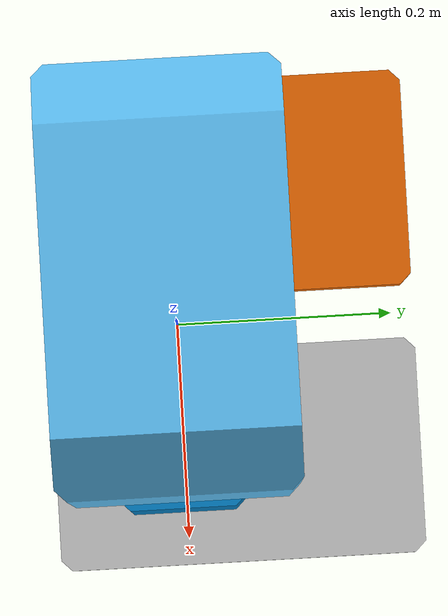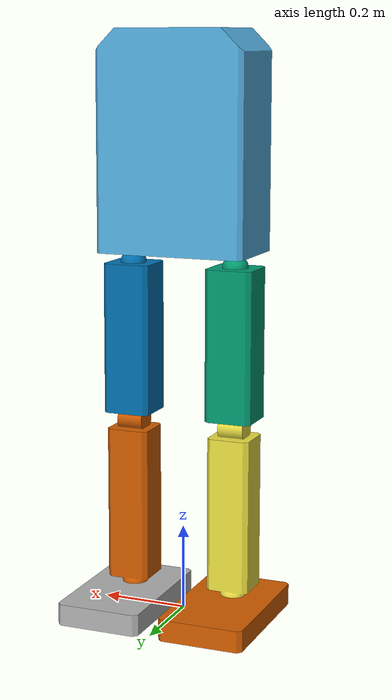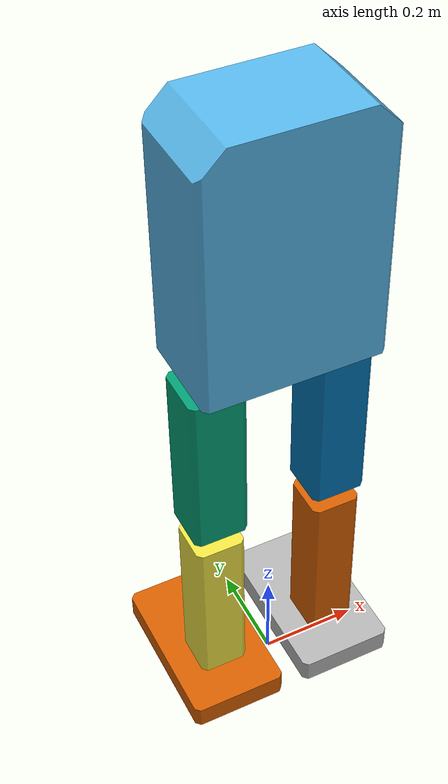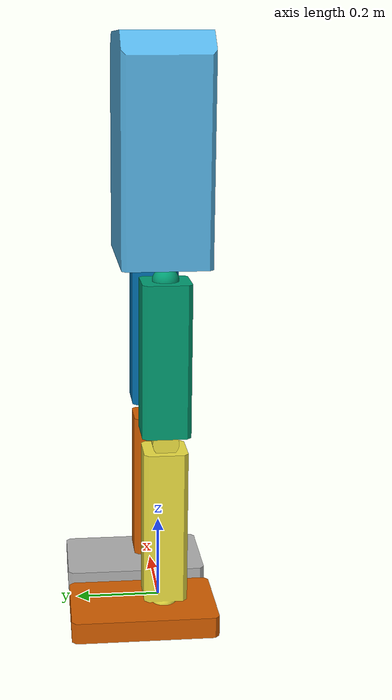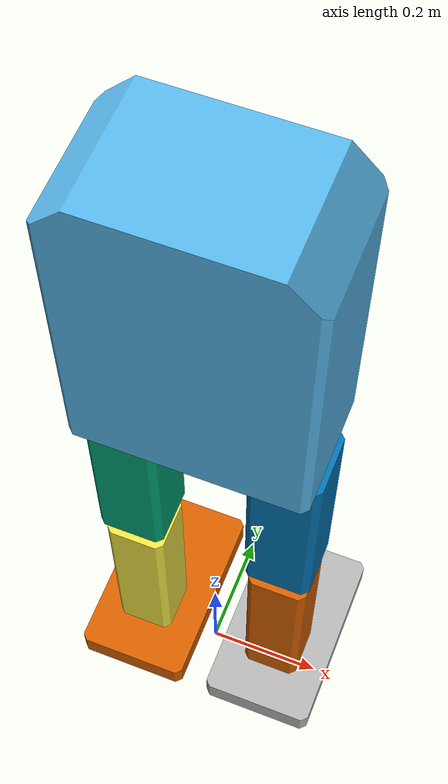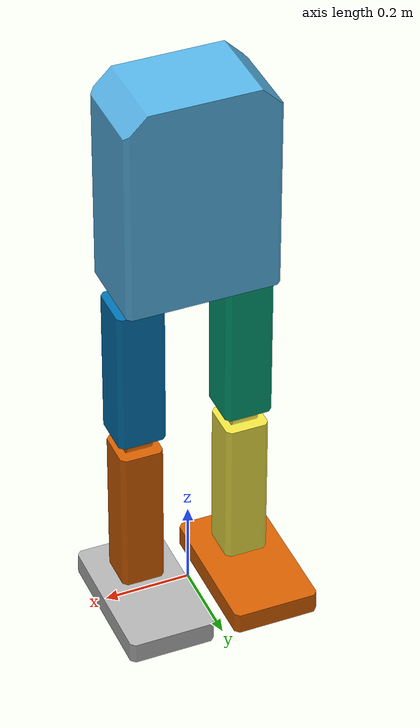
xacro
<?xml version="1.0"?>
<robot name="humanoid" xmlns:xacro="http://www.ros.org/wiki/xacro">

  <xacro:include filename="$(find humanoid_description)/urdf/humanoid.xacro"/>
  <xacro:include filename="$(find humanoid_gazebo)/urdf/transmissions/leg_transmissions_macro.xacro"/>
  <xacro:include filename="$(find humanoid_gazebo)/urdf/ros2_control.xacro"/>
  <xacro:leg_transmissions_macro prefix="left_"/>
  <xacro:leg_transmissions_macro prefix="right_"/>

  <xacro:humanoid_ros2_control/>

  <gazebo reference="left_foot_link">
    <mu1>1</mu1>
    <mu2>1</mu2>
    <kp>2000000.0</kp>
    <kd>100.0</kd>
    <min_depth>0.001</min_depth>
    <max_vel>0.01</max_vel>
  </gazebo>

  <gazebo reference="right_foot_link">
    <mu1>1</mu1>
    <mu2>1</mu2>
    <kp>2000000.0</kp>
    <kd>100.0</kd>
    <min_depth>0.001</min_depth>
    <max_vel>0.01</max_vel>
  </gazebo>

  <gazebo>
    <!-- Joint state publisher -->
    <plugin filename="libgazebo_ros2_control.so" name="gazebo_ros2_control">
      <parameters>$(find humanoid_gazebo)/config/ros2_control_controllers.yaml</parameters>
    </plugin>
    <plugin name="base_ground_truth" filename="libgazebo_ros_p3d.so">
      <ros>
        <namespace>/</namespace>
      </ros>
      <body_name>base</body_name>
      <frame_name>world</frame_name>
      <update_rate>100.0</update_rate>
    </plugin>
  </gazebo>

  <gazebo reference="left_ankle_pitch">
    <provideFeedback>true</provideFeedback>
  </gazebo>
  <gazebo reference="right_ankle_pitch">
    <provideFeedback>true</provideFeedback>
  </gazebo>
  <!-- Ankle force/torque sensors. They publish the ankle_pitch joint wrench in the
       foot_link frame (ankle), measured from child (foot) to parent. -->
  <gazebo>
    <plugin name="left_foot_ft" filename="libgazebo_ros_ft_sensor.so">
      <ros>
        <remapping>wrench:=left_foot_ft</remapping>
      </ros>
      <joint_name>left_ankle_pitch</joint_name>
      <update_rate>500.0</update_rate>
    </plugin>
    <plugin name="right_foot_ft" filename="libgazebo_ros_ft_sensor.so">
      <ros>
        <remapping>wrench:=right_foot_ft</remapping>
      </ros>
      <joint_name>right_ankle_pitch</joint_name>
      <update_rate>500.0</update_rate>
    </plugin>
  </gazebo>

</robot>

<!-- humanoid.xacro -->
<robot name="humanoid" xmlns:xacro="http://www.ros.org/wiki/xacro">
  <xacro:include filename="$(find humanoid_description)/urdf/properties.xacro"/>
  <xacro:include filename="$(find humanoid_description)/urdf/inertia.xacro"/>
  <xacro:include filename="$(find humanoid_description)/urdf/links/torso.xacro"/>
  <xacro:include filename="$(find humanoid_description)/urdf/links/leg_macro.xacro"/>
  <xacro:include filename="$(find humanoid_description)/urdf/joints/leg_joints_macro.xacro"/>

  <xacro:arg name="floating" default="false"/>
  <xacro:if value="$(arg floating)">
    <link name="world"/>
    <joint name="world_to_base" type="fixed">
      <origin xyz="0 0 0" rpy="0 0 0"/>
      <parent link="world"/>
      <child link="base"/>
    </joint>
  </xacro:if>

  <link name="base"/>
  <joint name="base_to_torso" type="fixed">
    <origin xyz="0 0 1.1" rpy="0 0 0"/>
    <parent link="base"/>
    <child link="torso_link"/>
  </joint>
  <xacro:torso_macro/>
  <xacro:leg_macro side="left" prefix="left_"/>
  <xacro:leg_joints_macro side="left" prefix="left_" x_offset="${hip_x_offset}"/>
  <xacro:leg_macro side="right" prefix="right_"/>
  <xacro:leg_joints_macro side="right" prefix="right_" x_offset="${-hip_x_offset}"/>
</robot>

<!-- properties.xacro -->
<robot xmlns:xacro="http://www.ros.org/wiki/xacro">

  <!-- Link geometry properties -->
  <xacro:property name="torso_x" value="0.35"/>
  <xacro:property name="torso_y" value="0.2"/>
  <xacro:property name="torso_z" value="0.5"/>

  <xacro:property name="thigh_radius" value="0.07"/>
  <xacro:property name="thigh_length" value="0.4"/>
  <xacro:property name="shin_radius" value="0.06"/>
  <xacro:property name="shin_length" value="0.4"/>
  <xacro:property name="foot_x" value="0.20"/>
  <xacro:property name="foot_y" value="0.34"/>
  <xacro:property name="foot_z" value="0.05"/>

  <!-- Link mass properties -->
  <xacro:property name="torso_mass" value="12.0"/>
  <xacro:property name="hip_yaw_mass" value="0.1"/>
  <xacro:property name="hip_pitch_mass" value="0.1"/>
  <xacro:property name="thigh_mass" value="5.0"/>
  <xacro:property name="shank_mass" value="3.0"/>
  <xacro:property name="ankle_mass" value="0.1"/>
  <xacro:property name="foot_mass" value="1.0"/>
  <xacro:property name="dummy_link_inertia" value="1e-4"/>

  <!-- Joint offsets and origins -->
  <xacro:property name="hip_x_offset" value="0.125"/>
  <xacro:property name="hip_roll_origin_z" value="${(-torso_z)/2}"/>
  <xacro:property name="knee_origin_z" value="${-thigh_length}"/>
  <xacro:property name="ankle_roll_origin_z" value="${-shin_length}"/>

  <!-- Joint limits -->
  <xacro:property name="hip_yaw_limit_lower" value="-1.0"/>
  <xacro:property name="hip_yaw_limit_upper" value="1.0"/>

  <xacro:property name="hip_roll_limit_lower" value="-0.6"/>
  <xacro:property name="hip_roll_limit_upper" value="0.6"/>

  <xacro:property name="hip_pitch_limit_lower" value="-1.5"/>
  <xacro:property name="hip_pitch_limit_upper" value="1.2"/>

  <xacro:property name="knee_pitch_limit_lower" value="-2.4"/>
  <xacro:property name="knee_pitch_limit_upper" value="0"/>

  <xacro:property name="ankle_pitch_limit_lower" value="-0.5"/>
  <xacro:property name="ankle_pitch_limit_upper" value="0.8"/>

  <xacro:property name="ankle_roll_limit_lower" value="-0.4"/>
  <xacro:property name="ankle_roll_limit_upper" value="0.4"/>

  <xacro:property name="hip_yaw_limit_effort" value="200"/>
  <xacro:property name="hip_roll_limit_effort" value="200"/>
  <xacro:property name="hip_pitch_limit_effort" value="220"/>
  <xacro:property name="knee_pitch_limit_effort" value="180"/>
  <xacro:property name="ankle_pitch_limit_effort" value="120"/>
  <xacro:property name="ankle_roll_limit_effort" value="120"/>
  <xacro:property name="leg_joint_limit_velocity" value="15.0"/>

</robot>

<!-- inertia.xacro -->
<robot xmlns:xacro="http://www.ros.org/wiki/xacro">

  <xacro:macro name="box_inertia" params="mass x y z">
    <inertia
      ixx="${mass * (y*y + z*z) / 12.0}"
      ixy="0.0"
      ixz="0.0"
      iyy="${mass * (x*x + z*z) / 12.0}"
      iyz="0.0"
      izz="${mass * (x*x + y*y) / 12.0}"/>
  </xacro:macro>

  <xacro:macro name="cylinder_inertia" params="mass radius length">
    <inertia
      ixx="${mass * (3*radius*radius + length*length) / 12.0}"
      ixy="0.0"
      ixz="0.0"
      iyy="${mass * (3*radius*radius + length*length) / 12.0}"
      iyz="0.0"
      izz="${mass * radius*radius / 2.0}"/>
  </xacro:macro>

</robot>

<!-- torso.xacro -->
<robot xmlns:xacro="http://www.ros.org/wiki/xacro">

  <xacro:macro name="torso_macro" params="">
    <link name="torso_link">
      <inertial>
        <origin xyz="0 0 0" rpy="0 0 0"/>
        <mass value="${torso_mass}"/>
        <xacro:box_inertia mass="${torso_mass}" x="${torso_x}" y="${torso_y}" z="${torso_z}"/>
      </inertial>
      <visual>
        <origin xyz="${-torso_x/2} ${-torso_y/2} ${-torso_z/2}" rpy="0 0 0"/>
        <geometry>
          <mesh filename="package://humanoid_description/urdf/meshes/torso_viz.stl" scale="0.001 0.001 0.001"/>
        </geometry>
      </visual>
      <collision>
        <origin xyz="0 0 0" rpy="0 0 0"/>
        <geometry>
          <box size="${torso_x} ${torso_y} ${torso_z}"/>
        </geometry>
      </collision>
    </link>
  </xacro:macro>

</robot>

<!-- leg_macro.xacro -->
<robot xmlns:xacro="http://www.ros.org/wiki/xacro">

  <xacro:macro name="leg_macro" params="side prefix">

    <link name="${prefix}hip_yaw_link">
      <inertial>
        <origin xyz="0 0 0" rpy="0 0 0"/>
        <mass value="${hip_yaw_mass}"/>
        <inertia ixx="${dummy_link_inertia}" ixy="0.0" ixz="0.0" iyy="${dummy_link_inertia}" iyz="0.0" izz="${dummy_link_inertia}"/>
      </inertial>
    </link>

    <link name="${prefix}hip_pitch_link">
      <inertial>
        <origin xyz="0 0 0" rpy="0 0 0"/>
        <mass value="${hip_pitch_mass}"/>
        <inertia ixx="${dummy_link_inertia}" ixy="0.0" ixz="0.0" iyy="${dummy_link_inertia}" iyz="0.0" izz="${dummy_link_inertia}"/>
      </inertial>
    </link>

    <link name="${prefix}thigh_link">
      <inertial>
        <origin xyz="0 0 ${-thigh_length/2}" rpy="0 0 0"/>
        <mass value="${thigh_mass}"/>
        <xacro:cylinder_inertia mass="${thigh_mass}" radius="${thigh_radius}" length="${thigh_length}"/>
      </inertial>
      <visual>
        <origin xyz="-0.055 -0.055 ${-0.03}" rpy="0 0 0"/>
        <geometry>
          <mesh filename="package://humanoid_description/urdf/meshes/thigh_viz.stl" scale="0.001 0.001 0.001"/>
        </geometry>
      </visual>
      <collision>
        <origin xyz="0 0 ${-thigh_length/2}" rpy="0 0 0"/>
        <geometry>
          <cylinder radius="${thigh_radius}" length="${thigh_length}"/>
        </geometry>
      </collision>
    </link>

    <link name="${prefix}shank_link">
      <inertial>
        <origin xyz="0 0 ${-shin_length/2}" rpy="0 0 0"/>
        <mass value="${shank_mass}"/>
        <xacro:cylinder_inertia mass="${shank_mass}" radius="${shin_radius}" length="${shin_length}"/>
      </inertial>
      <visual>
        <origin xyz="0.05 -0.05 ${-shin_length+0.02}" rpy="0 0 ${pi/2}"/>
        <geometry>
          <mesh filename="package://humanoid_description/urdf/meshes/shin_viz.stl" scale="0.001 0.001 0.001"/>
        </geometry>
      </visual>
      <collision>
        <origin xyz="0 0 ${-shin_length/2}" rpy="0 0 0"/>
        <geometry>
          <cylinder radius="${shin_radius}" length="${shin_length}"/>
        </geometry>
      </collision>
    </link>

    <link name="${prefix}ankle_link">
      <inertial>
        <origin xyz="0 0 0" rpy="0 0 0"/>
        <mass value="${ankle_mass}"/>
        <inertia ixx="${dummy_link_inertia}" ixy="0.0" ixz="0.0" iyy="${dummy_link_inertia}" iyz="0.0" izz="${dummy_link_inertia}"/>
      </inertial>
    </link>

    <link name="${prefix}foot_link">
      <inertial>
        <origin xyz="0 0.05 ${-foot_z/2}" rpy="0 0 0"/>
        <mass value="${foot_mass}"/>
        <xacro:box_inertia mass="${foot_mass}" x="${foot_x}" y="${foot_y}" z="${foot_z}"/>
      </inertial>
      <visual>
        <origin xyz="-0.1 -0.12 ${-foot_z}" rpy="0 0 0"/>
        <geometry>
          <mesh filename="package://humanoid_description/urdf/meshes/foot_viz.stl" scale="0.001 0.001 0.001"/>
        </geometry>
      </visual>
      <collision>
        <origin xyz="0 0.05 ${-foot_z/2}" rpy="0 0 0"/>
        <geometry>
          <box size="${foot_x} ${foot_y} ${foot_z}"/>
        </geometry>
      </collision>
    </link>

  </xacro:macro>

</robot>

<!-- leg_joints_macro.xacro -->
<robot xmlns:xacro="http://www.ros.org/wiki/xacro">

  <xacro:macro name="leg_joints_macro" params="side prefix x_offset">
    <joint name="${prefix}hip_roll" type="revolute">
      <parent link="torso_link"/>
      <child link="${prefix}hip_yaw_link"/>
      <origin xyz="${x_offset} 0.0 ${hip_roll_origin_z}" rpy="0 0 0"/>
      <axis xyz="0 1 0"/>
      <limit lower="${hip_roll_limit_lower}" upper="${hip_roll_limit_upper}" effort="${hip_roll_limit_effort}" velocity="${leg_joint_limit_velocity}"/>
      <dynamics damping="1" friction="0.1"/>
    </joint>

    <joint name="${prefix}hip_yaw" type="revolute">
      <parent link="${prefix}hip_yaw_link"/>
      <child link="${prefix}hip_pitch_link"/>
      <origin xyz="0 0 0" rpy="0 0 0"/>
      <axis xyz="0 0 1"/>
      <limit lower="${hip_yaw_limit_lower}" upper="${hip_yaw_limit_upper}" effort="${hip_yaw_limit_effort}" velocity="${leg_joint_limit_velocity}"/>
      <dynamics damping="1" friction="0.1"/>
    </joint>

    <joint name="${prefix}hip_pitch" type="revolute">
      <parent link="${prefix}hip_pitch_link"/>
      <child link="${prefix}thigh_link"/>
      <origin xyz="0 0 0" rpy="0 0 0"/>
      <axis xyz="1 0 0"/>
      <limit lower="${hip_pitch_limit_lower}" upper="${hip_pitch_limit_upper}" effort="${hip_pitch_limit_effort}" velocity="${leg_joint_limit_velocity}"/>
      <dynamics damping="1" friction="0.1"/>
    </joint>

    <joint name="${prefix}knee" type="revolute">
      <parent link="${prefix}thigh_link"/>
      <child link="${prefix}shank_link"/>
      <origin xyz="0 0 ${knee_origin_z}" rpy="0 0 0"/>
      <axis xyz="1 0 0"/>
      <limit lower="${knee_pitch_limit_lower}" upper="${knee_pitch_limit_upper}" effort="${knee_pitch_limit_effort}" velocity="${leg_joint_limit_velocity}"/>
      <dynamics damping="1" friction="0.1"/>
    </joint>

    <joint name="${prefix}ankle_roll" type="revolute">
      <parent link="${prefix}shank_link"/>
      <child link="${prefix}ankle_link"/>
      <origin xyz="0 0 ${ankle_roll_origin_z}" rpy="0 0 0"/>
      <axis xyz="0 1 0"/>
      <limit lower="${ankle_roll_limit_lower}" upper="${ankle_roll_limit_upper}" effort="${ankle_roll_limit_effort}" velocity="${leg_joint_limit_velocity}"/>
      <dynamics damping="1" friction="0.1"/>
    </joint>

    <joint name="${prefix}ankle_pitch" type="revolute">
      <parent link="${prefix}ankle_link"/>
      <child link="${prefix}foot_link"/>
      <origin xyz="0 0 0" rpy="0 0 0"/>
      <axis xyz="1 0 0"/>
      <limit lower="${ankle_pitch_limit_lower}" upper="${ankle_pitch_limit_upper}" effort="${ankle_pitch_limit_effort}" velocity="${leg_joint_limit_velocity}"/>
      <dynamics damping="1" friction="0.1"/>
    </joint>
  </xacro:macro>

</robot>
